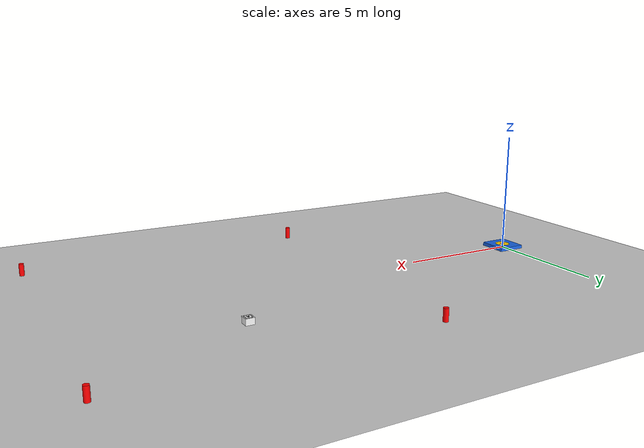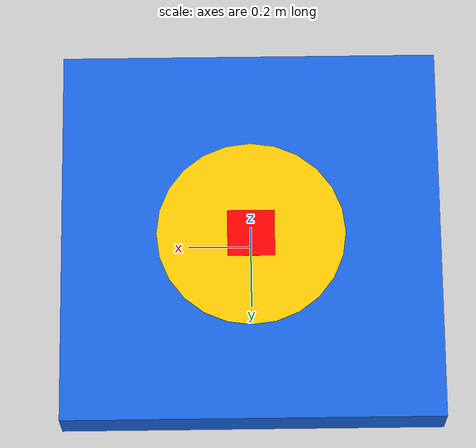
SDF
<sdf version="1.6">
 <world name="addc_arena">
  <include><uri>https://fuel.gazebosim.org/1.0/OpenRobotics/models/Sun</uri></include>
  <include><uri>https://fuel.gazebosim.org/1.0/OpenRobotics/models/Ground Plane</uri></include>
  <physics type="ode">
   <max_step_size>0.0025</max_step_size>
   <real_time_factor>1.0</real_time_factor>
   <real_time_update_rate>400</real_time_update_rate>
   <gravity>0 0 -9.8066</gravity>
  </physics>
  <plugin filename="gz-sim-physics-system" name="gz::sim::systems::Physics"/>
  <plugin filename="gz-sim-sensors-system" name="gz::sim::systems::Sensors">
   <render_engine>ogre2</render_engine>
  </plugin>
  <plugin filename="gz-sim-user-commands-system" name="gz::sim::systems::UserCommands"/>
  <plugin filename="gz-sim-scene-broadcaster-system" name="gz::sim::systems::SceneBroadcaster"/>
  <plugin filename="gz-sim-imu-system" name="gz::sim::systems::Imu"/>
  <plugin filename="gz-sim-navsat-system" name="gz::sim::systems::NavSat"/>
  <include><name>home_landing_pad</name><uri>model://landing_pad</uri><pose>0 0 0.075 0 0 0</pose></include>
  <include>
   <name>intelligence_cache_box</name>
   <uri>model://intelligence_cache</uri>
   <pose>14.0 3.0 0.125 0 0 0</pose>
  </include>
  <model name="arena_marker_corner_1">
   <static>true</static>
   <pose>8.0 -6.0 0.25 0 0 0</pose>
   <link name="link">
    <visual name="visual">
     <geometry><cylinder><radius>0.1</radius><length>0.5</length></cylinder></geometry>
     <material><ambient>1 0 0 1</ambient><diffuse>1 0 0 1</diffuse></material>
    </visual>
   </link>
  </model>
  <model name="arena_marker_corner_2">
   <static>true</static>
   <pose>20.0 -6.0 0.25 0 0 0</pose>
   <link name="link">
    <visual name="visual">
     <geometry><cylinder><radius>0.1</radius><length>0.5</length></cylinder></geometry>
     <material><ambient>1 0 0 1</ambient><diffuse>1 0 0 1</diffuse></material>
    </visual>
   </link>
  </model>
  <model name="arena_marker_corner_3">
   <static>true</static>
   <pose>20.0 6.0 0.25 0 0 0</pose>
   <link name="link">
    <visual name="visual">
     <geometry><cylinder><radius>0.1</radius><length>0.5</length></cylinder></geometry>
     <material><ambient>1 0 0 1</ambient><diffuse>1 0 0 1</diffuse></material>
    </visual>
   </link>
  </model>
  <model name="arena_marker_corner_4">
   <static>true</static>
   <pose>8.0 6.0 0.25 0 0 0</pose>
   <link name="link">
    <visual name="visual">
     <geometry><cylinder><radius>0.1</radius><length>0.5</length></cylinder></geometry>
     <material><ambient>1 0 0 1</ambient><diffuse>1 0 0 1</diffuse></material>
    </visual>
   </link>
  </model>
 </world>
</sdf>

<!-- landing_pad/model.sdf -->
<sdf version="1.6">
  <model name="landing_pad">
    <static>true</static>
    <link name="pad_link">
      <collision name="collision">
        <geometry>
          <box>
            <size>1.2 1.2 0.15</size>
          </box>
        </geometry>
      </collision>
      <visual name="visual_base">
        <geometry>
          <box>
            <size>1.2 1.2 0.15</size>
          </box>
        </geometry>
        <material>
          <ambient>0.1 0.3 0.8 1.0</ambient>
          <diffuse>0.1 0.4 0.9 1.0</diffuse>
          <specular>0.2 0.2 0.2 1.0</specular>
        </material>
      </visual>
      <visual name="visual_center_circle">
        <pose>0 0 0.076 0 0 0</pose>
        <geometry>
          <cylinder>
            <radius>0.3</radius>
            <length>0.002</length>
          </cylinder>
        </geometry>
        <material>
          <ambient>1.0 0.8 0.0 1.0</ambient>
          <diffuse>1.0 0.8 0.0 1.0</diffuse>
        </material>
      </visual>
      <visual name="visual_inner_marker">
        <pose>0 0 0.078 0 0 0</pose>
        <geometry>
          <box>
            <size>0.15 0.15 0.002</size>
          </box>
        </geometry>
        <material>
          <ambient>1.0 0.0 0.0 1.0</ambient>
          <diffuse>1.0 0.0 0.0 1.0</diffuse>
        </material>
      </visual>
    </link>
  </model>
</sdf>

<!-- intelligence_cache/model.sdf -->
<sdf version="1.6">
  <model name="intelligence_cache">
    <static>true</static>
    <link name="cache_link">
      <collision name="collision">
        <geometry>
          <box>
            <size>0.35 0.35 0.25</size>
          </box>
        </geometry>
      </collision>
      <visual name="visual_box">
        <geometry>
          <box>
            <size>0.35 0.35 0.25</size>
          </box>
        </geometry>
        <material>
          <ambient>0.9 0.9 0.9 1.0</ambient>
          <diffuse>0.95 0.95 0.95 1.0</diffuse>
        </material>
      </visual>
      <visual name="visual_qr_surface">
        <pose>0 0 0.126 0 0 0</pose>
        <geometry>
          <box>
            <size>0.28 0.28 0.002</size>
          </box>
        </geometry>
        <material>
          <ambient>0.0 0.0 0.0 1.0</ambient>
          <diffuse>0.05 0.05 0.05 1.0</diffuse>
        </material>
      </visual>
      <visual name="visual_qr_inner_square">
        <pose>0 0 0.128 0 0 0</pose>
        <geometry>
          <box>
            <size>0.22 0.22 0.002</size>
          </box>
        </geometry>
        <material>
          <ambient>1.0 1.0 1.0 1.0</ambient>
          <diffuse>1.0 1.0 1.0 1.0</diffuse>
        </material>
      </visual>
      <visual name="visual_qr_center_dot">
        <pose>0 0 0.130 0 0 0</pose>
        <geometry>
          <box>
            <size>0.10 0.10 0.002</size>
          </box>
        </geometry>
        <material>
          <ambient>0.0 0.0 0.0 1.0</ambient>
          <diffuse>0.0 0.0 0.0 1.0</diffuse>
        </material>
      </visual>
    </link>
  </model>
</sdf>
